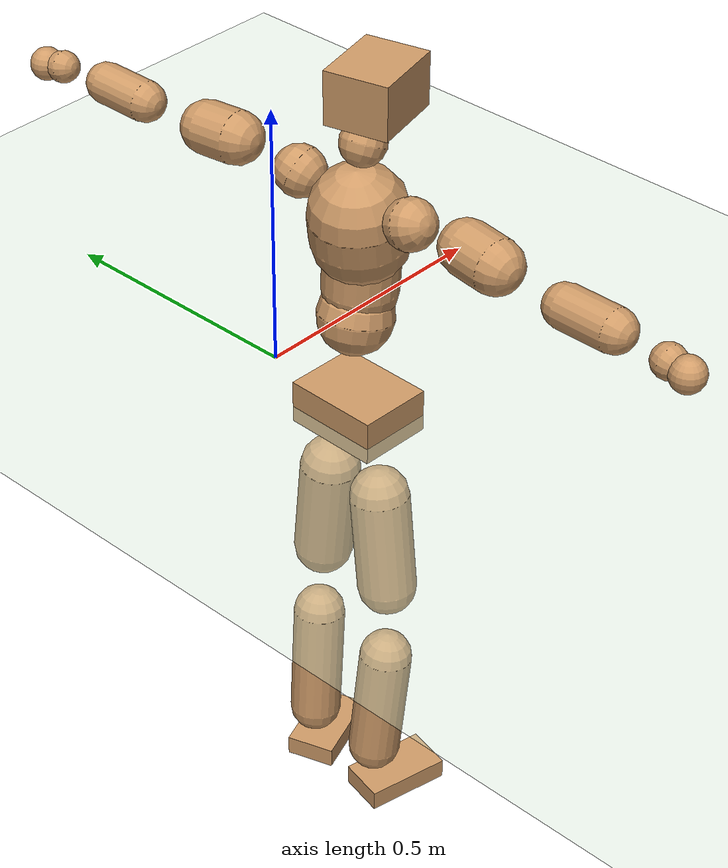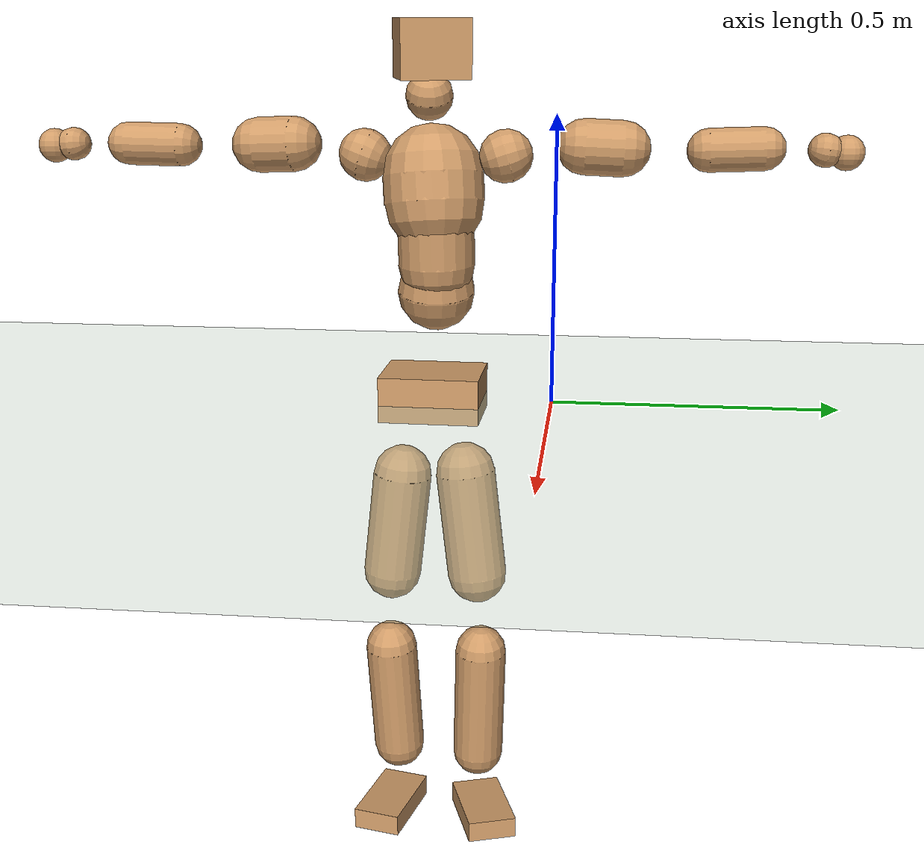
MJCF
<mujoco model="humanoid">
  <compiler coordinate="local" angle="radian"/>
  <default>
    <joint damping="0.0" armature="0.01" stiffness="0.0" limited="true"/>
    <geom conaffinity="1" condim="3" contype="7" margin="0.001" rgba="0.8 0.6 .4 1"/>
  </default>
  <asset>
    <texture type="skybox" builtin="gradient" rgb1=".4 .5 .6" rgb2="0 0 0" width="100" height="100"/>
    <texture builtin="flat" height="1278" mark="cross" markrgb="1 1 1" name="texgeom" random="0.01" rgb1="0.8 0.6 0.4" rgb2="0.8 0.6 0.4" type="cube" width="127"/>
    <texture builtin="checker" height="100" name="texplane" rgb1="0 0 0" rgb2="0.8 0.8 0.8" type="2d" width="100"/>
    <material name="MatPlane" reflectance="0.5" shininess="1" specular="1" texrepeat="60 60" texture="texplane"/>
    <material name="geom" texture="texgeom" texuniform="true"/>
  </asset>
  <worldbody>
    <light cutoff="100" diffuse="1 1 1" dir="-0 0 -1.3" directional="true" exponent="1" pos="0 0 1.3" specular=".1 .1 .1"/>
    <geom conaffinity="1" condim="3" name="floor" pos="0 0 0" rgba="0.8 0.9 0.8 1" size="100 100 .2" type="plane" material="MatPlane"/>
    <body name="Pelvis" pos="-0.0039 -0.2141 0.0157">
      <freejoint name="Pelvis"/>
      <geom type="box" contype="1" conaffinity="1" density="5359.374211" pos="-0.0105 0.0002 -0.0076" size="0.0696 0.0894 0.0407" quat="0.9999 0.0000 0.0000 -0.0109" name="Pelvis"/>
      <body name="L_Hip" pos="-0.0213 0.0478 -0.0754">
        <joint name="L_Hip_x" type="hinge" pos="0 0 0" axis="1 0 0" stiffness="1600" damping="160" armature="0.02" range="-180.0000 180.0000"/>
        <joint name="L_Hip_y" type="hinge" pos="0 0 0" axis="0 1 0" stiffness="1600" damping="160" armature="0.02" range="-180.0000 180.0000"/>
        <joint name="L_Hip_z" type="hinge" pos="0 0 0" axis="0 0 1" stiffness="1600" damping="160" armature="0.02" range="-180.0000 180.0000"/>
        <geom type="capsule" contype="1" conaffinity="1" density="2040.816327" size="0.0544" fromto="0.0023 0.0096 -0.0838 0.0077 0.0324 -0.2829" name="L_Hip"/>
        <body name="L_Knee" pos="0.0099 0.042 -0.3667">
          <joint name="L_Knee_x" type="hinge" pos="0 0 0" axis="1 0 0" stiffness="1600" damping="160" armature="0.02" range="-180.0000 180.0000"/>
          <joint name="L_Knee_y" type="hinge" pos="0 0 0" axis="0 1 0" stiffness="1600" damping="160" armature="0.02" range="-180.0000 180.0000"/>
          <joint name="L_Knee_z" type="hinge" pos="0 0 0" axis="0 0 1" stiffness="1600" damping="160" armature="0.02" range="-180.0000 180.0000"/>
          <geom type="capsule" contype="1" conaffinity="1" density="1234.567901" size="0.0479" fromto="-0.0066 -0.0023 -0.0776 -0.0260 -0.0090 -0.3036" name="L_Knee"/>
          <body name="L_Ankle" pos="-0.0326 -0.0113 -0.3813">
            <joint name="L_Ankle_x" type="hinge" pos="0 0 0" axis="1 0 0" stiffness="1600" damping="160" armature="0.02" range="-180.0000 180.0000"/>
            <joint name="L_Ankle_y" type="hinge" pos="0 0 0" axis="0 1 0" stiffness="1600" damping="160" armature="0.02" range="-180.0000 180.0000"/>
            <joint name="L_Ankle_z" type="hinge" pos="0 0 0" axis="0 0 1" stiffness="1600" damping="160" armature="0.02" range="-180.0000 180.0000"/>
            <geom type="box" contype="1" conaffinity="1" density="999.999969" pos="0.0541 0.0182 -0.0266" size="0.0767 0.0459 0.0195" quat="0.9869 0.0000 0.0000 0.1615" name="L_Ankle"/>
            <body name="L_Toe" pos="0.1082 0.0364 -0.0531">
              <joint name="L_Toe_x" type="hinge" pos="0 0 0" axis="1 0 0" stiffness="1000" damping="100" armature="0.02" range="-180.0000 180.0000"/>
              <joint name="L_Toe_y" type="hinge" pos="0 0 0" axis="0 1 0" stiffness="1000" damping="100" armature="0.02" range="-180.0000 180.0000"/>
              <joint name="L_Toe_z" type="hinge" pos="0 0 0" axis="0 0 1" stiffness="1000" damping="100" armature="0.02" range="-180.0000 180.0000"/>
              <geom type="box" contype="1" conaffinity="1" density="7649249.12735" pos="0.0000 0.0000 0.0263" size="0.001 0.0023 0.001" quat="0.9860 0.0000 0.0000 0.1668" name="L_Toe"/>
            </body>
          </body>
        </body>
      </body>
      <body name="R_Hip" pos="-0.0169 -0.0503 -0.0839">
        <joint name="R_Hip_x" type="hinge" pos="0 0 0" axis="1 0 0" stiffness="1600" damping="160" armature="0.02" range="-180.0000 180.0000"/>
        <joint name="R_Hip_y" type="hinge" pos="0 0 0" axis="0 1 0" stiffness="1600" damping="160" armature="0.02" range="-180.0000 180.0000"/>
        <joint name="R_Hip_z" type="hinge" pos="0 0 0" axis="0 0 1" stiffness="1600" damping="160" armature="0.02" range="-180.0000 180.0000"/>
        <geom type="capsule" contype="1" conaffinity="1" density="2040.816327" size="0.0536" fromto="-0.0005 -0.0092 -0.0831 -0.0015 -0.0308 -0.2768" name="R_Hip"/>
        <body name="R_Knee" pos="-0.002 -0.04 -0.3599">
          <joint name="R_Knee_x" type="hinge" pos="0 0 0" axis="1 0 0" stiffness="1600" damping="160" armature="0.02" range="-180.0000 180.0000"/>
          <joint name="R_Knee_y" type="hinge" pos="0 0 0" axis="0 1 0" stiffness="1600" damping="160" armature="0.02" range="-180.0000 180.0000"/>
          <joint name="R_Knee_z" type="hinge" pos="0 0 0" axis="0 0 1" stiffness="1600" damping="160" armature="0.02" range="-180.0000 180.0000"/>
          <geom type="capsule" contype="1" conaffinity="1" density="1234.567901" size="0.0484" fromto="-0.0062 0.0035 -0.0781 -0.0237 0.0134 -0.2965" name="R_Knee"/>
          <body name="R_Ankle" pos="-0.0299 0.017 -0.3746">
            <joint name="R_Ankle_x" type="hinge" pos="0 0 0" axis="1 0 0" stiffness="1600" damping="160" armature="0.02" range="-180.0000 180.0000"/>
            <joint name="R_Ankle_y" type="hinge" pos="0 0 0" axis="0 1 0" stiffness="1600" damping="160" armature="0.02" range="-180.0000 180.0000"/>
            <joint name="R_Ankle_z" type="hinge" pos="0 0 0" axis="0 0 1" stiffness="1600" damping="160" armature="0.02" range="-180.0000 180.0000"/>
            <geom type="box" contype="1" conaffinity="1" density="999.999992" pos="0.0577 -0.0131 -0.0277" size="0.0798 0.0444 0.0197" quat="0.9938 0.0000 0.0000 -0.1112" name="R_Ankle"/>
            <body name="R_Toe" pos="0.1154 -0.0262 -0.0553">
              <joint name="R_Toe_x" type="hinge" pos="0 0 0" axis="1 0 0" stiffness="1000" damping="100" armature="0.02" range="-180.0000 180.0000"/>
              <joint name="R_Toe_y" type="hinge" pos="0 0 0" axis="0 1 0" stiffness="1000" damping="100" armature="0.02" range="-180.0000 180.0000"/>
              <joint name="R_Toe_z" type="hinge" pos="0 0 0" axis="0 0 1" stiffness="1000" damping="100" armature="0.02" range="-180.0000 180.0000"/>
              <geom type="box" contype="1" conaffinity="1" density="8231987.436425" pos="0.0000 0.0000 0.0285" size="0.0009 0.0022 0.001" quat="0.9949 0.0000 0.0000 -0.1013" name="R_Toe"/>
            </body>
          </body>
        </body>
      </body>
      <body name="Torso" pos="-0.0247 0.0039 0.1137">
        <joint name="Torso_x" type="hinge" pos="0 0 0" axis="1 0 0" stiffness="2000" damping="200" armature="0.02" range="-180.0000 180.0000"/>
        <joint name="Torso_y" type="hinge" pos="0 0 0" axis="0 1 0" stiffness="2000" damping="200" armature="0.02" range="-180.0000 180.0000"/>
        <joint name="Torso_z" type="hinge" pos="0 0 0" axis="0 0 1" stiffness="2000" damping="200" armature="0.02" range="-180.0000 180.0000"/>
        <geom type="capsule" contype="1" conaffinity="1" density="2040.816327" size="0.068" fromto="0.0140 0.0023 0.0665 0.0133 0.0022 0.0632" name="Torso"/>
        <body name="Spine" pos="0.0273 0.0045 0.1296">
          <joint name="Spine_x" type="hinge" pos="0 0 0" axis="1 0 0" stiffness="2000" damping="200" armature="0.02" range="-180.0000 180.0000"/>
          <joint name="Spine_y" type="hinge" pos="0 0 0" axis="0 1 0" stiffness="2000" damping="200" armature="0.02" range="-180.0000 180.0000"/>
          <joint name="Spine_z" type="hinge" pos="0 0 0" axis="0 0 1" stiffness="2000" damping="200" armature="0.02" range="-180.0000 180.0000"/>
          <geom type="capsule" contype="1" conaffinity="1" density="2040.816327" size="0.0671" fromto="0.0036 -0.0011 0.0670 -0.0008 0.0003 -0.0157" name="Spine"/>
          <body name="Chest" pos="0.0028 -0.0009 0.0513">
            <joint name="Chest_x" type="hinge" pos="0 0 0" axis="1 0 0" stiffness="2000" damping="200" armature="0.02" range="-180.0000 180.0000"/>
            <joint name="Chest_y" type="hinge" pos="0 0 0" axis="0 1 0" stiffness="2000" damping="200" armature="0.02" range="-180.0000 180.0000"/>
            <joint name="Chest_z" type="hinge" pos="0 0 0" axis="0 0 1" stiffness="2000" damping="200" armature="0.02" range="-180.0000 180.0000"/>
            <geom type="capsule" contype="1" conaffinity="1" density="2040.816327" size="0.0873" fromto="-0.0151 -0.0059 0.0857 -0.0068 -0.0027 0.0388" name="Chest"/>
            <body name="Neck" pos="-0.0307 -0.0148 0.1789">
              <joint name="Neck_x" type="hinge" pos="0 0 0" axis="1 0 0" stiffness="1000" damping="100" armature="0.02" range="-180.0000 180.0000"/>
              <joint name="Neck_y" type="hinge" pos="0 0 0" axis="0 1 0" stiffness="1000" damping="100" armature="0.02" range="-180.0000 180.0000"/>
              <joint name="Neck_z" type="hinge" pos="0 0 0" axis="0 0 1" stiffness="1000" damping="100" armature="0.02" range="-180.0000 180.0000"/>
              <geom type="capsule" contype="1" conaffinity="1" density="1000" size="0.0406" fromto="0.0190 0.0040 0.0375 0.0199 0.0041 0.0393" name="Neck"/>
              <body name="Head" pos="0.0388 0.0081 0.0767">
                <joint name="Head_x" type="hinge" pos="0 0 0" axis="1 0 0" stiffness="1000" damping="100" armature="0.02" range="-180.0000 180.0000"/>
                <joint name="Head_y" type="hinge" pos="0 0 0" axis="0 1 0" stiffness="1000" damping="100" armature="0.02" range="-180.0000 180.0000"/>
                <joint name="Head_z" type="hinge" pos="0 0 0" axis="0 0 1" stiffness="1000" damping="100" armature="0.02" range="-180.0000 180.0000"/>
                <geom type="box" contype="1" conaffinity="1" density="2250.00007" pos="0.0204 0.0050 0.0394" size="0.0706 0.0581 0.0484" quat="0.9927 0.0000 0.0000 0.1209" name="Head"/>
              </body>
            </body>
            <body name="L_Thorax" pos="-0.0152 0.0638 0.0978">
              <joint name="L_Thorax_x" type="hinge" pos="0 0 0" axis="1 0 0" stiffness="1000" damping="100" armature="0.02" range="-180.0000 180.0000"/>
              <joint name="L_Thorax_y" type="hinge" pos="0 0 0" axis="0 1 0" stiffness="1000" damping="100" armature="0.02" range="-180.0000 180.0000"/>
              <joint name="L_Thorax_z" type="hinge" pos="0 0 0" axis="0 0 1" stiffness="1000" damping="100" armature="0.02" range="-180.0000 180.0000"/>
              <geom type="capsule" contype="1" conaffinity="1" density="1000" size="0.0455" fromto="-0.0072 0.0546 0.0194 -0.0075 0.0565 0.0200" name="L_Thorax"/>
              <body name="L_Shoulder" pos="-0.0147 0.1111 0.0394">
                <joint name="L_Shoulder_x" type="hinge" pos="0 0 0" axis="1 0 0" stiffness="1000" damping="100" armature="0.02" range="-720.0000 720.0000"/>
                <joint name="L_Shoulder_y" type="hinge" pos="0 0 0" axis="0 1 0" stiffness="1000" damping="100" armature="0.02" range="-720.0000 720.0000"/>
                <joint name="L_Shoulder_z" type="hinge" pos="0 0 0" axis="0 0 1" stiffness="1000" damping="100" armature="0.02" range="-720.0000 720.0000"/>
                <geom type="capsule" contype="1" conaffinity="1" density="1000" size="0.0475" fromto="-0.0058 0.0772 -0.0039 -0.0107 0.1431 -0.0072" name="L_Shoulder"/>
                <body name="L_Elbow" pos="-0.0165 0.2203 -0.0111">
                  <joint name="L_Elbow_x" type="hinge" pos="0 0 0" axis="1 0 0" stiffness="1000" damping="100" armature="0.02" range="-720.0000 720.0000"/>
                  <joint name="L_Elbow_y" type="hinge" pos="0 0 0" axis="0 1 0" stiffness="1000" damping="100" armature="0.02" range="-720.0000 720.0000"/>
                  <joint name="L_Elbow_z" type="hinge" pos="0 0 0" axis="0 0 1" stiffness="1000" damping="100" armature="0.02" range="-720.0000 720.0000"/>
                  <geom type="capsule" contype="1" conaffinity="1" density="1000" size="0.037" fromto="-0.0030 0.0669 0.0021 -0.0071 0.1602 0.0051" name="L_Elbow"/>
                  <body name="L_Wrist" pos="-0.01 0.2272 0.0072">
                    <joint name="L_Wrist_x" type="hinge" pos="0 0 0" axis="1 0 0" stiffness="600" damping="60" armature="0.02" range="-180.0000 180.0000"/>
                    <joint name="L_Wrist_y" type="hinge" pos="0 0 0" axis="0 1 0" stiffness="600" damping="60" armature="0.02" range="-180.0000 180.0000"/>
                    <joint name="L_Wrist_z" type="hinge" pos="0 0 0" axis="0 0 1" stiffness="600" damping="60" armature="0.02" range="-180.0000 180.0000"/>
                    <geom type="capsule" contype="1" conaffinity="1" density="1000" size="0.0289" fromto="-0.0063 0.0355 -0.0043 -0.0066 0.0375 -0.0046" name="L_Wrist"/>
                    <body name="L_Hand" pos="-0.0129 0.073 -0.0089">
                      <joint name="L_Hand_x" type="hinge" pos="0 0 0" axis="1 0 0" stiffness="600" damping="60" armature="0.02" range="-180.0000 180.0000"/>
                      <joint name="L_Hand_y" type="hinge" pos="0 0 0" axis="0 1 0" stiffness="600" damping="60" armature="0.02" range="-180.0000 180.0000"/>
                      <joint name="L_Hand_z" type="hinge" pos="0 0 0" axis="0 0 1" stiffness="600" damping="60" armature="0.02" range="-180.0000 180.0000"/>
                      <geom type="sphere" contype="1" conaffinity="1" density="1000" size="0.0300" pos="0.0000 0.0000 0.0000" name="L_Hand"/>
                    </body>
                  </body>
                </body>
              </body>
            </body>
            <body name="R_Thorax" pos="-0.0199 -0.0747 0.0971">
              <joint name="R_Thorax_x" type="hinge" pos="0 0 0" axis="1 0 0" stiffness="1000" damping="100" armature="0.02" range="-180.0000 180.0000"/>
              <joint name="R_Thorax_y" type="hinge" pos="0 0 0" axis="0 1 0" stiffness="1000" damping="100" armature="0.02" range="-180.0000 180.0000"/>
              <joint name="R_Thorax_z" type="hinge" pos="0 0 0" axis="0 0 1" stiffness="1000" damping="100" armature="0.02" range="-180.0000 180.0000"/>
              <geom type="capsule" contype="1" conaffinity="1" density="1000" size="0.0452" fromto="-0.0030 -0.0489 0.0196 -0.0032 -0.0508 0.0203" name="R_Thorax"/>
              <body name="R_Shoulder" pos="-0.0062 -0.0997 0.0399">
                <joint name="R_Shoulder_x" type="hinge" pos="0 0 0" axis="1 0 0" stiffness="1000" damping="100" armature="0.02" range="-720.0000 720.0000"/>
                <joint name="R_Shoulder_y" type="hinge" pos="0 0 0" axis="0 1 0" stiffness="1000" damping="100" armature="0.02" range="-720.0000 720.0000"/>
                <joint name="R_Shoulder_z" type="hinge" pos="0 0 0" axis="0 0 1" stiffness="1000" damping="100" armature="0.02" range="-720.0000 720.0000"/>
                <geom type="capsule" contype="1" conaffinity="1" density="1000" size="0.0476" fromto="-0.0081 -0.0771 -0.0034 -0.0149 -0.1417 -0.0063" name="R_Shoulder"/>
                <body name="R_Elbow" pos="-0.023 -0.2189 -0.0098">
                  <joint name="R_Elbow_x" type="hinge" pos="0 0 0" axis="1 0 0" stiffness="1000" damping="100" armature="0.02" range="-720.0000 720.0000"/>
                  <joint name="R_Elbow_y" type="hinge" pos="0 0 0" axis="0 1 0" stiffness="1000" damping="100" armature="0.02" range="-720.0000 720.0000"/>
                  <joint name="R_Elbow_z" type="hinge" pos="0 0 0" axis="0 0 1" stiffness="1000" damping="100" armature="0.02" range="-720.0000 720.0000"/>
                  <geom type="capsule" contype="1" conaffinity="1" density="1000" size="0.0374" fromto="-0.0019 -0.0673 0.0012 -0.0046 -0.1625 0.0028" name="R_Elbow"/>
                  <body name="R_Wrist" pos="-0.0065 -0.2298 0.0039">
                    <joint name="R_Wrist_x" type="hinge" pos="0 0 0" axis="1 0 0" stiffness="600" damping="60" armature="0.02" range="-180.0000 180.0000"/>
                    <joint name="R_Wrist_y" type="hinge" pos="0 0 0" axis="0 1 0" stiffness="600" damping="60" armature="0.02" range="-180.0000 180.0000"/>
                    <joint name="R_Wrist_z" type="hinge" pos="0 0 0" axis="0 0 1" stiffness="600" damping="60" armature="0.02" range="-180.0000 180.0000"/>
                    <geom type="capsule" contype="1" conaffinity="1" density="1000" size="0.029" fromto="-0.0040 -0.0359 -0.0033 -0.0043 -0.0379 -0.0035" name="R_Wrist"/>
                    <body name="R_Hand" pos="-0.0083 -0.0737 -0.0069">
                      <joint name="R_Hand_x" type="hinge" pos="0 0 0" axis="1 0 0" stiffness="600" damping="60" armature="0.02" range="-180.0000 180.0000"/>
                      <joint name="R_Hand_y" type="hinge" pos="0 0 0" axis="0 1 0" stiffness="600" damping="60" armature="0.02" range="-180.0000 180.0000"/>
                      <joint name="R_Hand_z" type="hinge" pos="0 0 0" axis="0 0 1" stiffness="600" damping="60" armature="0.02" range="-180.0000 180.0000"/>
                      <geom type="sphere" contype="1" conaffinity="1" density="1000" size="0.0300" pos="0.0000 0.0000 0.0000" name="R_Hand"/>
                    </body>
                  </body>
                </body>
              </body>
            </body>
          </body>
        </body>
      </body>
    </body>
  </worldbody>
  <actuator>
    <motor name="L_Hip_x" joint="L_Hip_x" gear="500"/>
    <motor name="L_Hip_y" joint="L_Hip_y" gear="500"/>
    <motor name="L_Hip_z" joint="L_Hip_z" gear="500"/>
    <motor name="L_Knee_x" joint="L_Knee_x" gear="500"/>
    <motor name="L_Knee_y" joint="L_Knee_y" gear="500"/>
    <motor name="L_Knee_z" joint="L_Knee_z" gear="500"/>
    <motor name="L_Ankle_x" joint="L_Ankle_x" gear="500"/>
    <motor name="L_Ankle_y" joint="L_Ankle_y" gear="500"/>
    <motor name="L_Ankle_z" joint="L_Ankle_z" gear="500"/>
    <motor name="L_Toe_x" joint="L_Toe_x" gear="500"/>
    <motor name="L_Toe_y" joint="L_Toe_y" gear="500"/>
    <motor name="L_Toe_z" joint="L_Toe_z" gear="500"/>
    <motor name="R_Hip_x" joint="R_Hip_x" gear="500"/>
    <motor name="R_Hip_y" joint="R_Hip_y" gear="500"/>
    <motor name="R_Hip_z" joint="R_Hip_z" gear="500"/>
    <motor name="R_Knee_x" joint="R_Knee_x" gear="500"/>
    <motor name="R_Knee_y" joint="R_Knee_y" gear="500"/>
    <motor name="R_Knee_z" joint="R_Knee_z" gear="500"/>
    <motor name="R_Ankle_x" joint="R_Ankle_x" gear="500"/>
    <motor name="R_Ankle_y" joint="R_Ankle_y" gear="500"/>
    <motor name="R_Ankle_z" joint="R_Ankle_z" gear="500"/>
    <motor name="R_Toe_x" joint="R_Toe_x" gear="500"/>
    <motor name="R_Toe_y" joint="R_Toe_y" gear="500"/>
    <motor name="R_Toe_z" joint="R_Toe_z" gear="500"/>
    <motor name="Torso_x" joint="Torso_x" gear="500"/>
    <motor name="Torso_y" joint="Torso_y" gear="500"/>
    <motor name="Torso_z" joint="Torso_z" gear="500"/>
    <motor name="Spine_x" joint="Spine_x" gear="500"/>
    <motor name="Spine_y" joint="Spine_y" gear="500"/>
    <motor name="Spine_z" joint="Spine_z" gear="500"/>
    <motor name="Chest_x" joint="Chest_x" gear="500"/>
    <motor name="Chest_y" joint="Chest_y" gear="500"/>
    <motor name="Chest_z" joint="Chest_z" gear="500"/>
    <motor name="Neck_x" joint="Neck_x" gear="500"/>
    <motor name="Neck_y" joint="Neck_y" gear="500"/>
    <motor name="Neck_z" joint="Neck_z" gear="500"/>
    <motor name="Head_x" joint="Head_x" gear="500"/>
    <motor name="Head_y" joint="Head_y" gear="500"/>
    <motor name="Head_z" joint="Head_z" gear="500"/>
    <motor name="L_Thorax_x" joint="L_Thorax_x" gear="500"/>
    <motor name="L_Thorax_y" joint="L_Thorax_y" gear="500"/>
    <motor name="L_Thorax_z" joint="L_Thorax_z" gear="500"/>
    <motor name="L_Shoulder_x" joint="L_Shoulder_x" gear="500"/>
    <motor name="L_Shoulder_y" joint="L_Shoulder_y" gear="500"/>
    <motor name="L_Shoulder_z" joint="L_Shoulder_z" gear="500"/>
    <motor name="L_Elbow_x" joint="L_Elbow_x" gear="500"/>
    <motor name="L_Elbow_y" joint="L_Elbow_y" gear="500"/>
    <motor name="L_Elbow_z" joint="L_Elbow_z" gear="500"/>
    <motor name="L_Wrist_x" joint="L_Wrist_x" gear="500"/>
    <motor name="L_Wrist_y" joint="L_Wrist_y" gear="500"/>
    <motor name="L_Wrist_z" joint="L_Wrist_z" gear="500"/>
    <motor name="L_Hand_x" joint="L_Hand_x" gear="500"/>
    <motor name="L_Hand_y" joint="L_Hand_y" gear="500"/>
    <motor name="L_Hand_z" joint="L_Hand_z" gear="500"/>
    <motor name="R_Thorax_x" joint="R_Thorax_x" gear="500"/>
    <motor name="R_Thorax_y" joint="R_Thorax_y" gear="500"/>
    <motor name="R_Thorax_z" joint="R_Thorax_z" gear="500"/>
    <motor name="R_Shoulder_x" joint="R_Shoulder_x" gear="500"/>
    <motor name="R_Shoulder_y" joint="R_Shoulder_y" gear="500"/>
    <motor name="R_Shoulder_z" joint="R_Shoulder_z" gear="500"/>
    <motor name="R_Elbow_x" joint="R_Elbow_x" gear="500"/>
    <motor name="R_Elbow_y" joint="R_Elbow_y" gear="500"/>
    <motor name="R_Elbow_z" joint="R_Elbow_z" gear="500"/>
    <motor name="R_Wrist_x" joint="R_Wrist_x" gear="500"/>
    <motor name="R_Wrist_y" joint="R_Wrist_y" gear="500"/>
    <motor name="R_Wrist_z" joint="R_Wrist_z" gear="500"/>
    <motor name="R_Hand_x" joint="R_Hand_x" gear="500"/>
    <motor name="R_Hand_y" joint="R_Hand_y" gear="500"/>
    <motor name="R_Hand_z" joint="R_Hand_z" gear="500"/>
  </actuator>
  <contact>
    <exclude body1="Torso" body2="Chest"/>
    <exclude body1="Head" body2="Chest"/>
    <exclude body1="R_Knee" body2="R_Toe"/>
    <exclude body1="R_Knee" body2="L_Ankle"/>
    <exclude body1="R_Knee" body2="L_Toe"/>
    <exclude body1="L_Knee" body2="L_Toe"/>
    <exclude body1="L_Knee" body2="R_Ankle"/>
    <exclude body1="L_Knee" body2="R_Toe"/>
    <exclude body1="L_Shoulder" body2="Chest"/>
    <exclude body1="R_Shoulder" body2="Chest"/>
  </contact>
  <sensor/>
  <size njmax="700" nconmax="700"/>
</mujoco>
